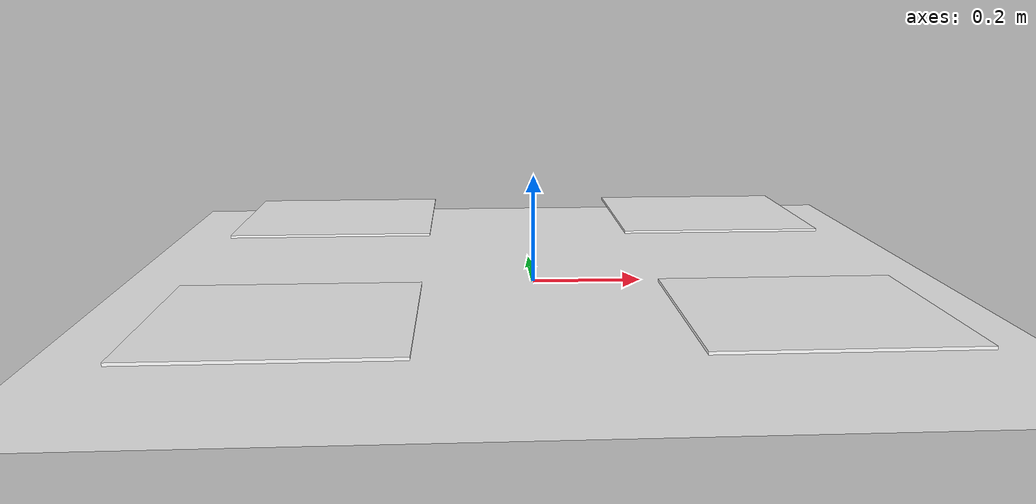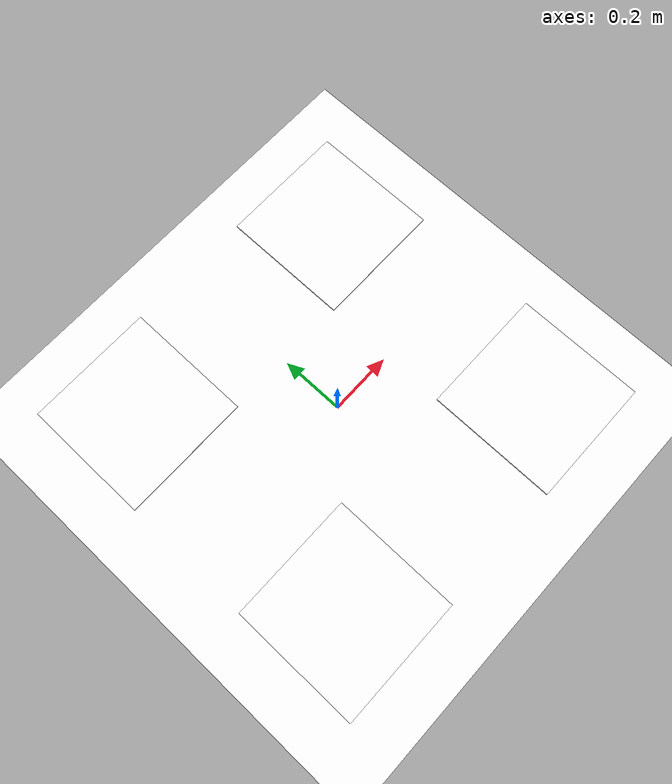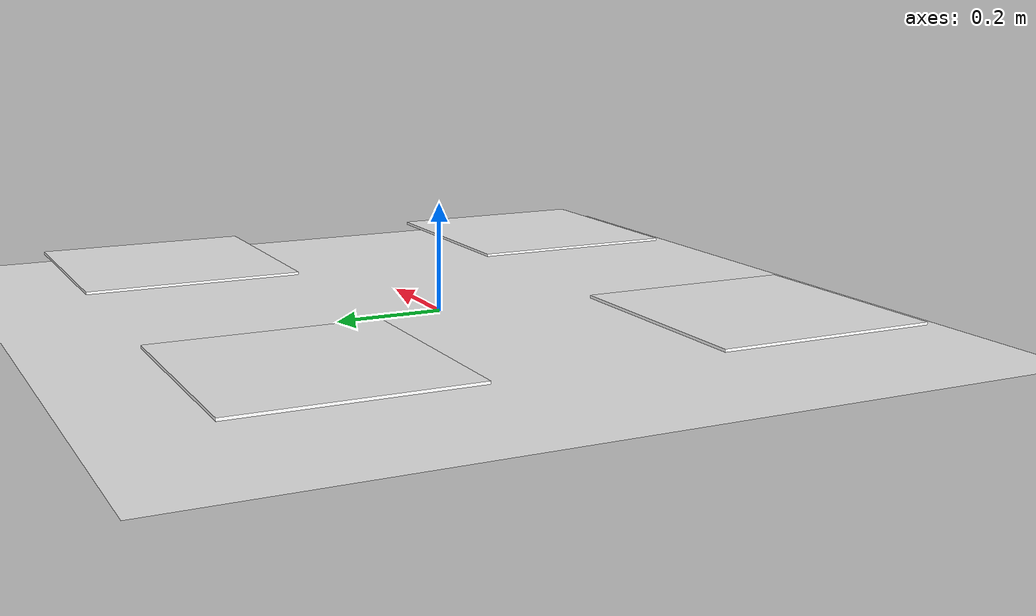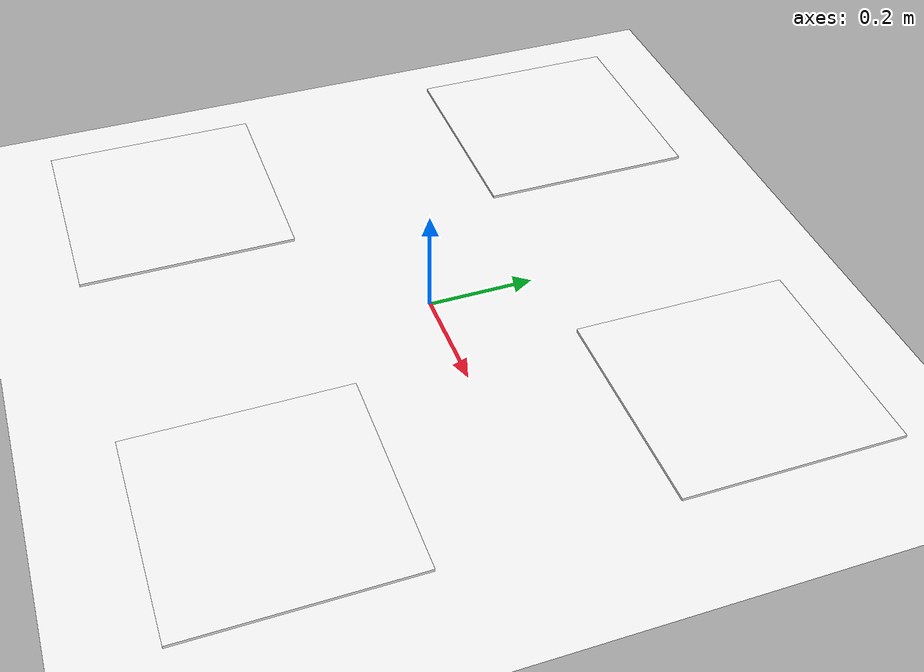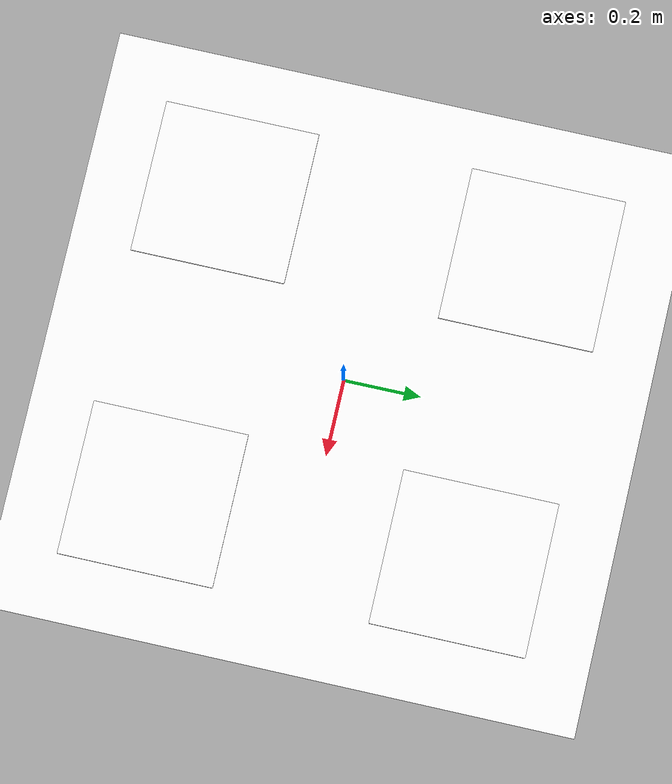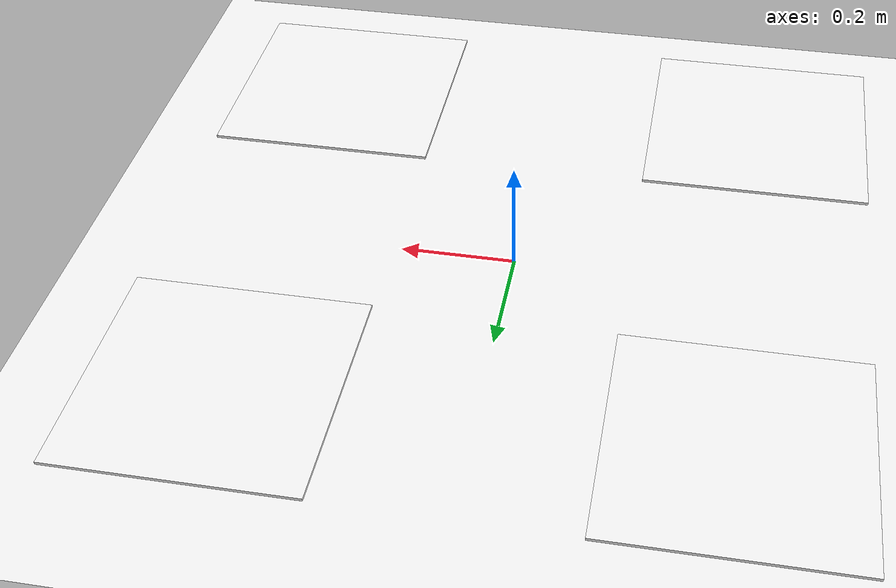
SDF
<?xml version="1.0" ?>
<sdf version="1.9">
  <world name="s125_simple">
    <physics type="ode">
      <max_step_size>0.004</max_step_size>
      <real_time_factor>1.0</real_time_factor>
      <real_time_update_rate>250</real_time_update_rate>
    </physics>
    <plugin name='gz::sim::systems::Physics' filename='libgz-sim-physics-system.so'/>
    <plugin name='gz::sim::systems::UserCommands' filename='libgz-sim-user-commands-system.so'/>
    <plugin name='gz::sim::systems::SceneBroadcaster' filename='libgz-sim-scene-broadcaster-system.so'/>
    <plugin name='gz::sim::systems::Contact' filename='libgz-sim-contact-system.so'/>
    <plugin name='gz::sim::systems::Imu' filename='libgz-sim-imu-system.so'/>
    <plugin name='gz::sim::systems::AirPressure' filename='libgz-sim-air-pressure-system.so'/>
    <plugin name='gz::sim::systems::Sensors' filename='libgz-sim-sensors-system.so'>
      <render_engine>ogre2</render_engine>
    </plugin>

    <gui fullscreen='0'>
      <plugin name='3D View' filename='MinimalScene'>
        <gz-gui>
          <title>3D View</title>
          <property type='bool' key='showTitleBar'>0</property>
          <property type='string' key='state'>docked</property>
        </gz-gui>
        <engine>ogre2</engine>
        <scene>scene</scene>
        <ambient_light>0.4 0.4 0.4</ambient_light>
        <background_color>0.8 0.85 1.0</background_color>
        <camera_pose>-4 -4 5 0 0.6 0.785</camera_pose>
      </plugin>
      <plugin filename='GzSceneManager'/>
      <plugin filename='EntityContextMenuPlugin'/>
      <plugin filename='InteractiveViewControl'/>
      <plugin filename='CameraTracking'/>
      <plugin filename='MarkerManager'/>
      <plugin filename='SelectEntities'/>
      <plugin filename='Spawn'/>
      <plugin filename='VisualizationCapabilities'/>
      <plugin filename='WorldControl'>
        <gz-gui>
          <title>World control</title>
          <property type='bool' key='showTitleBar'>0</property>
          <property type='bool' key='resizable'>0</property>
          <property type='double' key='height'>72</property>
          <property type='double' key='z'>1</property>
          <property type='string' key='state'>floating</property>
          <anchors target='3D View'>
            <line own='left' target='left'/>
            <line own='bottom' target='bottom'/>
          </anchors>
        </gz-gui>
        <play_pause>1</play_pause>
        <step>1</step>
        <start_paused>0</start_paused>
      </plugin>
      <!-- PIP: cf2 down-cam — operator-facing visual confirmation -->
      <plugin filename='ImageDisplay' name='Image Display'>
        <gz-gui>
          <title>cf2 downward_cam (PIP)</title>
          <property type='bool' key='showTitleBar'>1</property>
          <property type='string' key='state'>floating</property>
          <property type='double' key='width'>320</property>
          <property type='double' key='height'>240</property>
          <property type='double' key='x'>10</property>
          <property type='double' key='y'>10</property>
        </gz-gui>
        <topic>/downward_cam/image</topic>
        <topic_picker>true</topic_picker>
      </plugin>
    </gui>

    <wind><linear_velocity>0 0 0</linear_velocity></wind>
    <gravity>0 0 -9.80665</gravity>
    <magnetic_field>6e-06 2.3e-05 -4.2e-05</magnetic_field>
    <atmosphere type='adiabatic'/>

    <scene>
      <grid>false</grid>
      <ambient>0.6 0.6 0.6 1</ambient>
      <background>0.7 0.85 1.0 1</background>
      <shadows>true</shadows>
    </scene>

    <light type='directional' name='sun'>
      <cast_shadows>true</cast_shadows>
      <pose>0 0 20 0 0 0</pose>
      <diffuse>0.9 0.9 0.85 1</diffuse>
      <specular>0.2 0.2 0.2 1</specular>
      <direction>-0.3 -0.5 -0.8</direction>
    </light>

    <!-- Ground plane with Harmonic 4K texture, 25×25 m -->
    <model name="ground_plane">
      <static>true</static>
      <link name="link">
        <collision name="collision">
          <geometry>
            <plane><normal>0 0 1</normal><size>25 25</size></plane>
          </geometry>
        </collision>
        <visual name="visual">
          <geometry>
            <plane><normal>0 0 1</normal><size>25 25</size></plane>
          </geometry>
          <material>
            <diffuse>1 1 1 1</diffuse>
            <specular>0.1 0.1 0.1 1</specular>
            <pbr>
              <metal>
                <albedo_map>materials/textures/harmonic_alt200_4k.png</albedo_map>
              </metal>
            </pbr>
          </material>
        </visual>
      </link>
    </model>

    <model name="aruco_id0">
      <static>true</static>
      <pose>0.4 0.4 0.05 0 0 0</pose>
      <link name="link">
        <visual name="visual">
          <geometry><box><size>0.4 0.4 0.005</size></box></geometry>
          <material>
            <ambient>1 1 1 1</ambient><diffuse>1 1 1 1</diffuse>
            <pbr><metal>
              <albedo_map>materials/textures/aruco_4x4_50_id0.png</albedo_map>
              <metalness>0</metalness><roughness>1</roughness>
            </metal></pbr>
          </material>
        </visual>
      </link>
    </model>
    <model name="aruco_id1">
      <static>true</static>
      <pose>-0.4 0.4 0.05 0 0 0</pose>
      <link name="link">
        <visual name="visual">
          <geometry><box><size>0.4 0.4 0.005</size></box></geometry>
          <material>
            <ambient>1 1 1 1</ambient><diffuse>1 1 1 1</diffuse>
            <pbr><metal>
              <albedo_map>materials/textures/aruco_4x4_50_id1.png</albedo_map>
              <metalness>0</metalness><roughness>1</roughness>
            </metal></pbr>
          </material>
        </visual>
      </link>
    </model>
    <model name="aruco_id2">
      <static>true</static>
      <pose>-0.4 -0.4 0.05 0 0 0</pose>
      <link name="link">
        <visual name="visual">
          <geometry><box><size>0.4 0.4 0.005</size></box></geometry>
          <material>
            <ambient>1 1 1 1</ambient><diffuse>1 1 1 1</diffuse>
            <pbr><metal>
              <albedo_map>materials/textures/aruco_4x4_50_id2.png</albedo_map>
              <metalness>0</metalness><roughness>1</roughness>
            </metal></pbr>
          </material>
        </visual>
      </link>
    </model>
    <model name="aruco_id3">
      <static>true</static>
      <pose>0.4 -0.4 0.05 0 0 0</pose>
      <link name="link">
        <visual name="visual">
          <geometry><box><size>0.4 0.4 0.005</size></box></geometry>
          <material>
            <ambient>1 1 1 1</ambient><diffuse>1 1 1 1</diffuse>
            <pbr><metal>
              <albedo_map>materials/textures/aruco_4x4_50_id3.png</albedo_map>
              <metalness>0</metalness><roughness>1</roughness>
            </metal></pbr>
          </material>
        </visual>
      </link>
    </model>

  </world>
</sdf>
